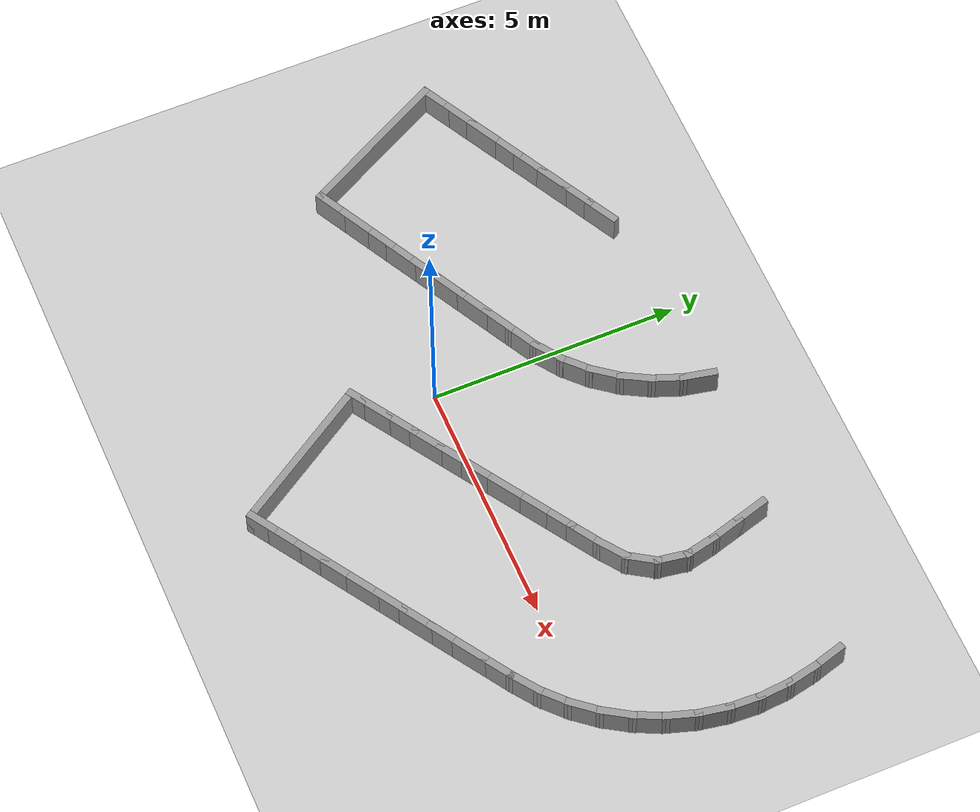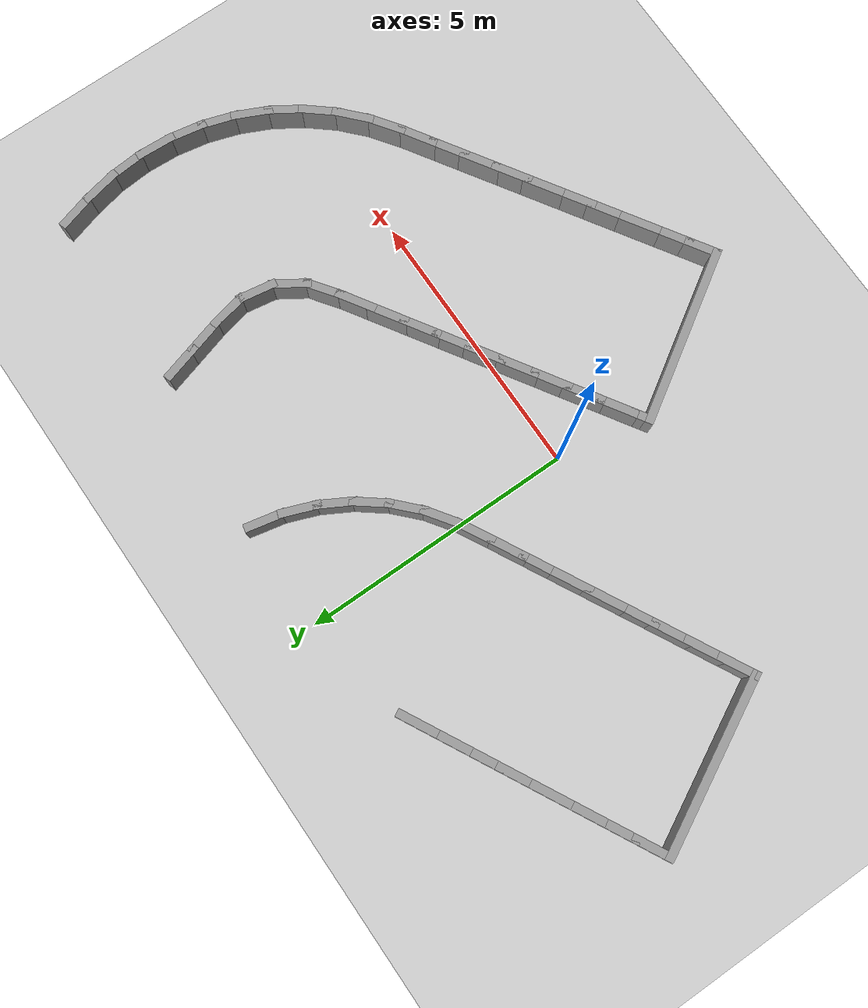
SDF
<sdf version="1.7">
 <world name="default">
  <model name="ground_plane">
   <static>1</static>
   <link name="link">
    <collision name="collision">
     <geometry><plane><normal>0 0 1</normal><size>100 100</size></plane></geometry>
     <surface><friction><ode><mu>100</mu><mu2>50</mu2></ode></friction></surface>
    </collision>
    <visual name="visual">
     <cast_shadows>0</cast_shadows>
     <geometry><plane><normal>0 0 1</normal><size>100 100</size></plane></geometry>
     <material>
      <script><uri>file://media/materials/scripts/gazebo.material</uri><name>Gazebo/Grey</name></script>
     </material>
    </visual>
   </link>
  </model>
  <model name="rand_turn_04">
   <link name="Wall_0">
    <collision name="Wall_0_Collision">
     <geometry><box><size>0.7500 0.1500 0.6000</size></box></geometry>
     <pose>0 0 0.3000 0 -0 0</pose>
    </collision>
    <visual name="Wall_0_Visual">
     <pose>0 0 0.3000 0 -0 0</pose>
     <geometry><box><size>0.7500 0.1500 0.6000</size></box></geometry>
     <material>
      <script><uri>file://media/materials/scripts/gazebo.material</uri><name>Gazebo/Grey</name></script>
      <ambient>1 1 1 1</ambient>
     </material>
    </visual>
    <pose>-6.0179 2.5511 0 0 -0 0.48577</pose>
   </link>
   <link name="Wall_1">
    <collision name="Wall_1_Collision">
     <geometry><box><size>0.7500 0.1500 0.6000</size></box></geometry>
     <pose>0 0 0.3000 0 -0 0</pose>
    </collision>
    <visual name="Wall_1_Visual">
     <pose>0 0 0.3000 0 -0 0</pose>
     <geometry><box><size>0.7500 0.1500 0.6000</size></box></geometry>
     <material>
      <script><uri>file://media/materials/scripts/gazebo.material</uri><name>Gazebo/Grey</name></script>
      <ambient>1 1 1 1</ambient>
     </material>
    </visual>
    <pose>-5.4874 2.8313 0 0 -0 0.48577</pose>
   </link>
   <link name="Wall_2">
    <collision name="Wall_2_Collision">
     <geometry><box><size>0.7500 0.1500 0.6000</size></box></geometry>
     <pose>0 0 0.3000 0 -0 0</pose>
    </collision>
    <visual name="Wall_2_Visual">
     <pose>0 0 0.3000 0 -0 0</pose>
     <geometry><box><size>0.7500 0.1500 0.6000</size></box></geometry>
     <material>
      <script><uri>file://media/materials/scripts/gazebo.material</uri><name>Gazebo/Grey</name></script>
      <ambient>1 1 1 1</ambient>
     </material>
    </visual>
    <pose>-4.9568 3.1114 0 0 -0 0.48577</pose>
   </link>
   <link name="Wall_3">
    <collision name="Wall_3_Collision">
     <geometry><box><size>0.7500 0.1500 0.6000</size></box></geometry>
     <pose>0 0 0.3000 0 -0 0</pose>
    </collision>
    <visual name="Wall_3_Visual">
     <pose>0 0 0.3000 0 -0 0</pose>
     <geometry><box><size>0.7500 0.1500 0.6000</size></box></geometry>
     <material>
      <script><uri>file://media/materials/scripts/gazebo.material</uri><name>Gazebo/Grey</name></script>
      <ambient>1 1 1 1</ambient>
     </material>
    </visual>
    <pose>-4.4262 3.3916 0 0 -0 0.48577</pose>
   </link>
   <link name="Wall_4">
    <collision name="Wall_4_Collision">
     <geometry><box><size>0.7500 0.1500 0.6000</size></box></geometry>
     <pose>0 0 0.3000 0 -0 0</pose>
    </collision>
    <visual name="Wall_4_Visual">
     <pose>0 0 0.3000 0 -0 0</pose>
     <geometry><box><size>0.7500 0.1500 0.6000</size></box></geometry>
     <material>
      <script><uri>file://media/materials/scripts/gazebo.material</uri><name>Gazebo/Grey</name></script>
      <ambient>1 1 1 1</ambient>
     </material>
    </visual>
    <pose>-3.8956 3.6717 0 0 -0 0.48577</pose>
   </link>
   <link name="Wall_5">
    <collision name="Wall_5_Collision">
     <geometry><box><size>0.7500 0.1500 0.6000</size></box></geometry>
     <pose>0 0 0.3000 0 -0 0</pose>
    </collision>
    <visual name="Wall_5_Visual">
     <pose>0 0 0.3000 0 -0 0</pose>
     <geometry><box><size>0.7500 0.1500 0.6000</size></box></geometry>
     <material>
      <script><uri>file://media/materials/scripts/gazebo.material</uri><name>Gazebo/Grey</name></script>
      <ambient>1 1 1 1</ambient>
     </material>
    </visual>
    <pose>-3.3650 3.9518 0 0 -0 0.48577</pose>
   </link>
   <link name="Wall_6">
    <collision name="Wall_6_Collision">
     <geometry><box><size>0.7500 0.1500 0.6000</size></box></geometry>
     <pose>0 0 0.3000 0 -0 0</pose>
    </collision>
    <visual name="Wall_6_Visual">
     <pose>0 0 0.3000 0 -0 0</pose>
     <geometry><box><size>0.7500 0.1500 0.6000</size></box></geometry>
     <material>
      <script><uri>file://media/materials/scripts/gazebo.material</uri><name>Gazebo/Grey</name></script>
      <ambient>1 1 1 1</ambient>
     </material>
    </visual>
    <pose>-2.8344 4.2320 0 0 -0 0.48577</pose>
   </link>
   <link name="Wall_7">
    <collision name="Wall_7_Collision">
     <geometry><box><size>0.7500 0.1500 0.6000</size></box></geometry>
     <pose>0 0 0.3000 0 -0 0</pose>
    </collision>
    <visual name="Wall_7_Visual">
     <pose>0 0 0.3000 0 -0 0</pose>
     <geometry><box><size>0.7500 0.1500 0.6000</size></box></geometry>
     <material>
      <script><uri>file://media/materials/scripts/gazebo.material</uri><name>Gazebo/Grey</name></script>
      <ambient>1 1 1 1</ambient>
     </material>
    </visual>
    <pose>-2.3038 4.5121 0 0 -0 0.48577</pose>
   </link>
   <link name="Wall_48">
    <collision name="Wall_48_Collision">
     <geometry><box><size>0.7500 0.1500 0.6000</size></box></geometry>
     <pose>0 0 0.3000 0 -0 0</pose>
    </collision>
    <visual name="Wall_48_Visual">
     <pose>0 0 0.3000 0 -0 0</pose>
     <geometry><box><size>0.7500 0.1500 0.6000</size></box></geometry>
     <material>
      <script><uri>file://media/materials/scripts/gazebo.material</uri><name>Gazebo/Grey</name></script>
      <ambient>1 1 1 1</ambient>
     </material>
    </visual>
    <pose>8.2523 4.4065 0 0 -0 -1.28869</pose>
   </link>
   <link name="Wall_49">
    <collision name="Wall_49_Collision">
     <geometry><box><size>0.7495 0.1500 0.6000</size></box></geometry>
     <pose>0 0 0.3000 0 -0 0</pose>
    </collision>
    <visual name="Wall_49_Visual">
     <pose>0 0 0.3000 0 -0 0</pose>
     <geometry><box><size>0.7495 0.1500 0.6000</size></box></geometry>
     <material>
      <script><uri>file://media/materials/scripts/gazebo.material</uri><name>Gazebo/Grey</name></script>
      <ambient>1 1 1 1</ambient>
     </material>
    </visual>
    <pose>8.3973 3.8250 0 0 -0 -1.36404</pose>
   </link>
   <link name="Wall_50">
    <collision name="Wall_50_Collision">
     <geometry><box><size>0.7495 0.1500 0.6000</size></box></geometry>
     <pose>0 0 0.3000 0 -0 0</pose>
    </collision>
    <visual name="Wall_50_Visual">
     <pose>0 0 0.3000 0 -0 0</pose>
     <geometry><box><size>0.7495 0.1500 0.6000</size></box></geometry>
     <material>
      <script><uri>file://media/materials/scripts/gazebo.material</uri><name>Gazebo/Grey</name></script>
      <ambient>1 1 1 1</ambient>
     </material>
    </visual>
    <pose>8.4823 3.2327 0 0 -0 -1.49255</pose>
   </link>
   <link name="Wall_51">
    <collision name="Wall_51_Collision">
     <geometry><box><size>0.7496 0.1500 0.6000</size></box></geometry>
     <pose>0 0 0.3000 0 -0 0</pose>
    </collision>
    <visual name="Wall_51_Visual">
     <pose>0 0 0.3000 0 -0 0</pose>
     <geometry><box><size>0.7496 0.1500 0.6000</size></box></geometry>
     <material>
      <script><uri>file://media/materials/scripts/gazebo.material</uri><name>Gazebo/Grey</name></script>
      <ambient>1 1 1 1</ambient>
     </material>
    </visual>
    <pose>8.4906 2.6345 0 0 -0 -1.62125</pose>
   </link>
   <link name="Wall_52">
    <collision name="Wall_52_Collision">
     <geometry><box><size>0.7496 0.1500 0.6000</size></box></geometry>
     <pose>0 0 0.3000 0 -0 0</pose>
    </collision>
    <visual name="Wall_52_Visual">
     <pose>0 0 0.3000 0 -0 0</pose>
     <geometry><box><size>0.7496 0.1500 0.6000</size></box></geometry>
     <material>
      <script><uri>file://media/materials/scripts/gazebo.material</uri><name>Gazebo/Grey</name></script>
      <ambient>1 1 1 1</ambient>
     </material>
    </visual>
    <pose>8.4221 2.0401 0 0 -0 -1.74994</pose>
   </link>
   <link name="Wall_53">
    <collision name="Wall_53_Collision">
     <geometry><box><size>0.7496 0.1500 0.6000</size></box></geometry>
     <pose>0 0 0.3000 0 -0 0</pose>
    </collision>
    <visual name="Wall_53_Visual">
     <pose>0 0 0.3000 0 -0 0</pose>
     <geometry><box><size>0.7496 0.1500 0.6000</size></box></geometry>
     <material>
      <script><uri>file://media/materials/scripts/gazebo.material</uri><name>Gazebo/Grey</name></script>
      <ambient>1 1 1 1</ambient>
     </material>
    </visual>
    <pose>8.2778 1.4594 0 0 -0 -1.87863</pose>
   </link>
   <link name="Wall_54">
    <collision name="Wall_54_Collision">
     <geometry><box><size>0.7496 0.1500 0.6000</size></box></geometry>
     <pose>0 0 0.3000 0 -0 0</pose>
    </collision>
    <visual name="Wall_54_Visual">
     <pose>0 0 0.3000 0 -0 0</pose>
     <geometry><box><size>0.7496 0.1500 0.6000</size></box></geometry>
     <material>
      <script><uri>file://media/materials/scripts/gazebo.material</uri><name>Gazebo/Grey</name></script>
      <ambient>1 1 1 1</ambient>
     </material>
    </visual>
    <pose>8.0602 0.9020 0 0 -0 -2.00741</pose>
   </link>
   <link name="Wall_55">
    <collision name="Wall_55_Collision">
     <geometry><box><size>0.7496 0.1500 0.6000</size></box></geometry>
     <pose>0 0 0.3000 0 -0 0</pose>
    </collision>
    <visual name="Wall_55_Visual">
     <pose>0 0 0.3000 0 -0 0</pose>
     <geometry><box><size>0.7496 0.1500 0.6000</size></box></geometry>
     <material>
      <script><uri>file://media/materials/scripts/gazebo.material</uri><name>Gazebo/Grey</name></script>
      <ambient>1 1 1 1</ambient>
     </material>
    </visual>
    <pose>7.7727 0.3772 0 0 -0 -2.13655</pose>
   </link>
   <link name="Wall_56">
    <collision name="Wall_56_Collision">
     <geometry><box><size>0.7496 0.1500 0.6000</size></box></geometry>
     <pose>0 0 0.3000 0 -0 0</pose>
    </collision>
    <visual name="Wall_56_Visual">
     <pose>0 0 0.3000 0 -0 0</pose>
     <geometry><box><size>0.7496 0.1500 0.6000</size></box></geometry>
     <material>
      <script><uri>file://media/materials/scripts/gazebo.material</uri><name>Gazebo/Grey</name></script>
      <ambient>1 1 1 1</ambient>
     </material>
    </visual>
    <pose>7.4202 -0.1062 0 0 -0 -2.26525</pose>
   </link>
   <link name="Wall_57">
    <collision name="Wall_57_Collision">
     <geometry><box><size>0.7496 0.1500 0.6000</size></box></geometry>
     <pose>0 0 0.3000 0 -0 0</pose>
    </collision>
    <visual name="Wall_57_Visual">
     <pose>0 0 0.3000 0 -0 0</pose>
     <geometry><box><size>0.7496 0.1500 0.6000</size></box></geometry>
     <material>
      <script><uri>file://media/materials/scripts/gazebo.material</uri><name>Gazebo/Grey</name></script>
      <ambient>1 1 1 1</ambient>
     </material>
    </visual>
    <pose>7.0085 -0.5404 0 0 -0 -2.39394</pose>
   </link>
   <link name="Wall_58">
    <collision name="Wall_58_Collision">
     <geometry><box><size>0.7496 0.1500 0.6000</size></box></geometry>
     <pose>0 0 0.3000 0 -0 0</pose>
    </collision>
    <visual name="Wall_58_Visual">
     <pose>0 0 0.3000 0 -0 0</pose>
     <geometry><box><size>0.7496 0.1500 0.6000</size></box></geometry>
     <material>
      <script><uri>file://media/materials/scripts/gazebo.material</uri><name>Gazebo/Grey</name></script>
      <ambient>1 1 1 1</ambient>
     </material>
    </visual>
    <pose>6.5446 -0.9184 0 0 -0 -2.52158</pose>
   </link>
   <link name="Wall_59">
    <collision name="Wall_59_Collision">
     <geometry><box><size>0.7500 0.1500 0.6000</size></box></geometry>
     <pose>0 0 0.3000 0 -0 0</pose>
    </collision>
    <visual name="Wall_59_Visual">
     <pose>0 0 0.3000 0 -0 0</pose>
     <geometry><box><size>0.7500 0.1500 0.6000</size></box></geometry>
     <material>
      <script><uri>file://media/materials/scripts/gazebo.material</uri><name>Gazebo/Grey</name></script>
      <ambient>1 1 1 1</ambient>
     </material>
    </visual>
    <pose>6.0476 -1.2538 0 0 -0 -2.57446</pose>
   </link>
   <link name="Wall_60">
    <collision name="Wall_60_Collision">
     <geometry><box><size>0.7500 0.1500 0.6000</size></box></geometry>
     <pose>0 0 0.3000 0 -0 0</pose>
    </collision>
    <visual name="Wall_60_Visual">
     <pose>0 0 0.3000 0 -0 0</pose>
     <geometry><box><size>0.7500 0.1500 0.6000</size></box></geometry>
     <material>
      <script><uri>file://media/materials/scripts/gazebo.material</uri><name>Gazebo/Grey</name></script>
      <ambient>1 1 1 1</ambient>
     </material>
    </visual>
    <pose>5.5416 -1.5761 0 0 -0 -2.57447</pose>
   </link>
   <link name="Wall_61">
    <collision name="Wall_61_Collision">
     <geometry><box><size>0.7500 0.1500 0.6000</size></box></geometry>
     <pose>0 0 0.3000 0 -0 0</pose>
    </collision>
    <visual name="Wall_61_Visual">
     <pose>0 0 0.3000 0 -0 0</pose>
     <geometry><box><size>0.7500 0.1500 0.6000</size></box></geometry>
     <material>
      <script><uri>file://media/materials/scripts/gazebo.material</uri><name>Gazebo/Grey</name></script>
      <ambient>1 1 1 1</ambient>
     </material>
    </visual>
    <pose>5.0355 -1.8984 0 0 -0 -2.57447</pose>
   </link>
   <link name="Wall_62">
    <collision name="Wall_62_Collision">
     <geometry><box><size>0.7500 0.1500 0.6000</size></box></geometry>
     <pose>0 0 0.3000 0 -0 0</pose>
    </collision>
    <visual name="Wall_62_Visual">
     <pose>0 0 0.3000 0 -0 0</pose>
     <geometry><box><size>0.7500 0.1500 0.6000</size></box></geometry>
     <material>
      <script><uri>file://media/materials/scripts/gazebo.material</uri><name>Gazebo/Grey</name></script>
      <ambient>1 1 1 1</ambient>
     </material>
    </visual>
    <pose>4.5294 -2.2208 0 0 -0 -2.57447</pose>
   </link>
   <link name="Wall_63">
    <collision name="Wall_63_Collision">
     <geometry><box><size>0.7500 0.1500 0.6000</size></box></geometry>
     <pose>0 0 0.3000 0 -0 0</pose>
    </collision>
    <visual name="Wall_63_Visual">
     <pose>0 0 0.3000 0 -0 0</pose>
     <geometry><box><size>0.7500 0.1500 0.6000</size></box></geometry>
     <material>
      <script><uri>file://media/materials/scripts/gazebo.material</uri><name>Gazebo/Grey</name></script>
      <ambient>1 1 1 1</ambient>
     </material>
    </visual>
    <pose>4.0233 -2.5431 0 0 -0 -2.57447</pose>
   </link>
   <link name="Wall_64">
    <collision name="Wall_64_Collision">
     <geometry><box><size>0.7500 0.1500 0.6000</size></box></geometry>
     <pose>0 0 0.3000 0 -0 0</pose>
    </collision>
    <visual name="Wall_64_Visual">
     <pose>0 0 0.3000 0 -0 0</pose>
     <geometry><box><size>0.7500 0.1500 0.6000</size></box></geometry>
     <material>
      <script><uri>file://media/materials/scripts/gazebo.material</uri><name>Gazebo/Grey</name></script>
      <ambient>1 1 1 1</ambient>
     </material>
    </visual>
    <pose>3.5173 -2.8654 0 0 -0 -2.57447</pose>
   </link>
   <link name="Wall_65">
    <collision name="Wall_65_Collision">
     <geometry><box><size>0.7500 0.1500 0.6000</size></box></geometry>
     <pose>0 0 0.3000 0 -0 0</pose>
    </collision>
    <visual name="Wall_65_Visual">
     <pose>0 0 0.3000 0 -0 0</pose>
     <geometry><box><size>0.7500 0.1500 0.6000</size></box></geometry>
     <material>
      <script><uri>file://media/materials/scripts/gazebo.material</uri><name>Gazebo/Grey</name></script>
      <ambient>1 1 1 1</ambient>
     </material>
    </visual>
    <pose>3.0112 -3.1877 0 0 -0 -2.57447</pose>
   </link>
   <link name="Wall_66">
    <collision name="Wall_66_Collision">
     <geometry><box><size>0.7500 0.1500 0.6000</size></box></geometry>
     <pose>0 0 0.3000 0 -0 0</pose>
    </collision>
    <visual name="Wall_66_Visual">
     <pose>0 0 0.3000 0 -0 0</pose>
     <geometry><box><size>0.7500 0.1500 0.6000</size></box></geometry>
     <material>
      <script><uri>file://media/materials/scripts/gazebo.material</uri><name>Gazebo/Grey</name></script>
      <ambient>1 1 1 1</ambient>
     </material>
    </visual>
    <pose>2.5051 -3.5100 0 0 -0 -2.57447</pose>
   </link>
   <link name="Wall_67">
    <collision name="Wall_67_Collision">
     <geometry><box><size>0.7500 0.1500 0.6000</size></box></geometry>
     <pose>0 0 0.3000 0 -0 0</pose>
    </collision>
    <visual name="Wall_67_Visual">
     <pose>0 0 0.3000 0 -0 0</pose>
     <geometry><box><size>0.7500 0.1500 0.6000</size></box></geometry>
     <material>
      <script><uri>file://media/materials/scripts/gazebo.material</uri><name>Gazebo/Grey</name></script>
      <ambient>1 1 1 1</ambient>
     </material>
    </visual>
    <pose>1.9991 -3.8324 0 0 -0 -2.57447</pose>
   </link>
   <link name="Wall_68">
    <collision name="Wall_68_Collision">
     <geometry><box><size>0.6569 0.1500 0.6000</size></box></geometry>
     <pose>0 0 0.3000 0 -0 0</pose>
    </collision>
    <visual name="Wall_68_Visual">
     <pose>0 0 0.3000 0 -0 0</pose>
     <geometry><box><size>0.6569 0.1500 0.6000</size></box></geometry>
     <material>
      <script><uri>file://media/materials/scripts/gazebo.material</uri><name>Gazebo/Grey</name></script>
      <ambient>1 1 1 1</ambient>
     </material>
    </visual>
    <pose>1.5322 -4.1297 0 0 -0 -2.57447</pose>
   </link>
   <link name="Wall_69">
    <collision name="Wall_69_Collision">
     <geometry><box><size>0.7500 0.1500 0.6000</size></box></geometry>
     <pose>0 0 0.3000 0 -0 0</pose>
    </collision>
    <visual name="Wall_69_Visual">
     <pose>0 0 0.3000 0 -0 0</pose>
     <geometry><box><size>0.7500 0.1500 0.6000</size></box></geometry>
     <material>
      <script><uri>file://media/materials/scripts/gazebo.material</uri><name>Gazebo/Grey</name></script>
      <ambient>1 1 1 1</ambient>
     </material>
    </visual>
    <pose>-4.5203 -0.2854 0 0 -0 0.48577</pose>
   </link>
   <link name="Wall_70">
    <collision name="Wall_70_Collision">
     <geometry><box><size>0.7500 0.1500 0.6000</size></box></geometry>
     <pose>0 0 0.3000 0 -0 0</pose>
    </collision>
    <visual name="Wall_70_Visual">
     <pose>0 0 0.3000 0 -0 0</pose>
     <geometry><box><size>0.7500 0.1500 0.6000</size></box></geometry>
     <material>
      <script><uri>file://media/materials/scripts/gazebo.material</uri><name>Gazebo/Grey</name></script>
      <ambient>1 1 1 1</ambient>
     </material>
    </visual>
    <pose>-3.9897 -0.0052 0 0 -0 0.48577</pose>
   </link>
   <link name="Wall_71">
    <collision name="Wall_71_Collision">
     <geometry><box><size>0.7500 0.1500 0.6000</size></box></geometry>
     <pose>0 0 0.3000 0 -0 0</pose>
    </collision>
    <visual name="Wall_71_Visual">
     <pose>0 0 0.3000 0 -0 0</pose>
     <geometry><box><size>0.7500 0.1500 0.6000</size></box></geometry>
     <material>
      <script><uri>file://media/materials/scripts/gazebo.material</uri><name>Gazebo/Grey</name></script>
      <ambient>1 1 1 1</ambient>
     </material>
    </visual>
    <pose>-3.4592 0.2749 0 0 -0 0.48577</pose>
   </link>
   <link name="Wall_72">
    <collision name="Wall_72_Collision">
     <geometry><box><size>0.7500 0.1500 0.6000</size></box></geometry>
     <pose>0 0 0.3000 0 -0 0</pose>
    </collision>
    <visual name="Wall_72_Visual">
     <pose>0 0 0.3000 0 -0 0</pose>
     <geometry><box><size>0.7500 0.1500 0.6000</size></box></geometry>
     <material>
      <script><uri>file://media/materials/scripts/gazebo.material</uri><name>Gazebo/Grey</name></script>
      <ambient>1 1 1 1</ambient>
     </material>
    </visual>
    <pose>-2.9286 0.5550 0 0 -0 0.48577</pose>
   </link>
   <link name="Wall_73">
    <collision name="Wall_73_Collision">
     <geometry><box><size>0.7500 0.1500 0.6000</size></box></geometry>
     <pose>0 0 0.3000 0 -0 0</pose>
    </collision>
    <visual name="Wall_73_Visual">
     <pose>0 0 0.3000 0 -0 0</pose>
     <geometry><box><size>0.7500 0.1500 0.6000</size></box></geometry>
     <material>
      <script><uri>file://media/materials/scripts/gazebo.material</uri><name>Gazebo/Grey</name></script>
      <ambient>1 1 1 1</ambient>
     </material>
    </visual>
    <pose>-2.3980 0.8352 0 0 -0 0.48577</pose>
   </link>
   <link name="Wall_74">
    <collision name="Wall_74_Collision">
     <geometry><box><size>0.7500 0.1500 0.6000</size></box></geometry>
     <pose>0 0 0.3000 0 -0 0</pose>
    </collision>
    <visual name="Wall_74_Visual">
     <pose>0 0 0.3000 0 -0 0</pose>
     <geometry><box><size>0.7500 0.1500 0.6000</size></box></geometry>
     <material>
      <script><uri>file://media/materials/scripts/gazebo.material</uri><name>Gazebo/Grey</name></script>
      <ambient>1 1 1 1</ambient>
     </material>
    </visual>
    <pose>-1.8674 1.1153 0 0 -0 0.48577</pose>
   </link>
   <link name="Wall_75">
    <collision name="Wall_75_Collision">
     <geometry><box><size>0.7500 0.1500 0.6000</size></box></geometry>
     <pose>0 0 0.3000 0 -0 0</pose>
    </collision>
    <visual name="Wall_75_Visual">
     <pose>0 0 0.3000 0 -0 0</pose>
     <geometry><box><size>0.7500 0.1500 0.6000</size></box></geometry>
     <material>
      <script><uri>file://media/materials/scripts/gazebo.material</uri><name>Gazebo/Grey</name></script>
      <ambient>1 1 1 1</ambient>
     </material>
    </visual>
    <pose>-1.3368 1.3954 0 0 -0 0.48577</pose>
   </link>
   <link name="Wall_76">
    <collision name="Wall_76_Collision">
     <geometry><box><size>0.7500 0.1500 0.6000</size></box></geometry>
     <pose>0 0 0.3000 0 -0 0</pose>
    </collision>
    <visual name="Wall_76_Visual">
     <pose>0 0 0.3000 0 -0 0</pose>
     <geometry><box><size>0.7500 0.1500 0.6000</size></box></geometry>
     <material>
      <script><uri>file://media/materials/scripts/gazebo.material</uri><name>Gazebo/Grey</name></script>
      <ambient>1 1 1 1</ambient>
     </material>
    </visual>
    <pose>-0.8062 1.6756 0 0 -0 0.48577</pose>
   </link>
   <link name="Wall_77">
    <collision name="Wall_77_Collision">
     <geometry><box><size>0.7499 0.1500 0.6000</size></box></geometry>
     <pose>0 0 0.3000 0 -0 0</pose>
    </collision>
    <visual name="Wall_77_Visual">
     <pose>0 0 0.3000 0 -0 0</pose>
     <geometry><box><size>0.7499 0.1500 0.6000</size></box></geometry>
     <material>
      <script><uri>file://media/materials/scripts/gazebo.material</uri><name>Gazebo/Grey</name></script>
      <ambient>1 1 1 1</ambient>
     </material>
    </visual>
    <pose>-0.2770 1.9581 0 0 -0 0.49503</pose>
   </link>
   <link name="Wall_78">
    <collision name="Wall_78_Collision">
     <geometry><box><size>0.7494 0.1500 0.6000</size></box></geometry>
     <pose>0 0 0.3000 0 -0 0</pose>
    </collision>
    <visual name="Wall_78_Visual">
     <pose>0 0 0.3000 0 -0 0</pose>
     <geometry><box><size>0.7494 0.1500 0.6000</size></box></geometry>
     <material>
      <script><uri>file://media/materials/scripts/gazebo.material</uri><name>Gazebo/Grey</name></script>
      <ambient>1 1 1 1</ambient>
     </material>
    </visual>
    <pose>0.2325 2.2726 0 0 -0 0.61091</pose>
   </link>
   <link name="Wall_79">
    <collision name="Wall_79_Collision">
     <geometry><box><size>0.7494 0.1500 0.6000</size></box></geometry>
     <pose>0 0 0.3000 0 -0 0</pose>
    </collision>
    <visual name="Wall_79_Visual">
     <pose>0 0 0.3000 0 -0 0</pose>
     <geometry><box><size>0.7494 0.1500 0.6000</size></box></geometry>
     <material>
      <script><uri>file://media/materials/scripts/gazebo.material</uri><name>Gazebo/Grey</name></script>
      <ambient>1 1 1 1</ambient>
     </material>
    </visual>
    <pose>0.6949 2.6512 0 0 -0 0.76139</pose>
   </link>
   <link name="Wall_80">
    <collision name="Wall_80_Collision">
     <geometry><box><size>0.7494 0.1500 0.6000</size></box></geometry>
     <pose>0 0 0.3000 0 -0 0</pose>
    </collision>
    <visual name="Wall_80_Visual">
     <pose>0 0 0.3000 0 -0 0</pose>
     <geometry><box><size>0.7494 0.1500 0.6000</size></box></geometry>
     <material>
      <script><uri>file://media/materials/scripts/gazebo.material</uri><name>Gazebo/Grey</name></script>
      <ambient>1 1 1 1</ambient>
     </material>
    </visual>
    <pose>1.0958 3.0946 0 0 -0 0.90985</pose>
   </link>
   <link name="Wall_81">
    <collision name="Wall_81_Collision">
     <geometry><box><size>0.7494 0.1500 0.6000</size></box></geometry>
     <pose>0 0 0.3000 0 -0 0</pose>
    </collision>
    <visual name="Wall_81_Visual">
     <pose>0 0 0.3000 0 -0 0</pose>
     <geometry><box><size>0.7494 0.1500 0.6000</size></box></geometry>
     <material>
      <script><uri>file://media/materials/scripts/gazebo.material</uri><name>Gazebo/Grey</name></script>
      <ambient>1 1 1 1</ambient>
     </material>
    </visual>
    <pose>1.4257 3.5930 0 0 -0 1.06249</pose>
   </link>
   <link name="Wall_82">
    <collision name="Wall_82_Collision">
     <geometry><box><size>0.7494 0.1500 0.6000</size></box></geometry>
     <pose>0 0 0.3000 0 -0 0</pose>
    </collision>
    <visual name="Wall_82_Visual">
     <pose>0 0 0.3000 0 -0 0</pose>
     <geometry><box><size>0.7494 0.1500 0.6000</size></box></geometry>
     <material>
      <script><uri>file://media/materials/scripts/gazebo.material</uri><name>Gazebo/Grey</name></script>
      <ambient>1 1 1 1</ambient>
     </material>
    </visual>
    <pose>1.6771 4.1353 0 0 -0 1.21067</pose>
   </link>
   <link name="Wall_83">
    <collision name="Wall_83_Collision">
     <geometry><box><size>0.7494 0.1500 0.6000</size></box></geometry>
     <pose>0 0 0.3000 0 -0 0</pose>
    </collision>
    <visual name="Wall_83_Visual">
     <pose>0 0 0.3000 0 -0 0</pose>
     <geometry><box><size>0.7494 0.1500 0.6000</size></box></geometry>
     <material>
      <script><uri>file://media/materials/scripts/gazebo.material</uri><name>Gazebo/Grey</name></script>
      <ambient>1 1 1 1</ambient>
     </material>
    </visual>
    <pose>1.8450 4.7089 0 0 -0 1.36170</pose>
   </link>
   <link name="Wall_106">
    <collision name="Wall_106_Collision">
     <geometry><box><size>0.7500 0.1500 0.6000</size></box></geometry>
     <pose>0 0 0.3000 0 -0 0</pose>
    </collision>
    <visual name="Wall_106_Visual">
     <pose>0 0 0.3000 0 -0 0</pose>
     <geometry><box><size>0.7500 0.1500 0.6000</size></box></geometry>
     <material>
      <script><uri>file://media/materials/scripts/gazebo.material</uri><name>Gazebo/Grey</name></script>
      <ambient>1 1 1 1</ambient>
     </material>
    </visual>
    <pose>4.9178 4.3858 0 0 -0 -1.28732</pose>
   </link>
   <link name="Wall_107">
    <collision name="Wall_107_Collision">
     <geometry><box><size>0.7500 0.1500 0.6000</size></box></geometry>
     <pose>0 0 0.3000 0 -0 0</pose>
    </collision>
    <visual name="Wall_107_Visual">
     <pose>0 0 0.3000 0 -0 0</pose>
     <geometry><box><size>0.7500 0.1500 0.6000</size></box></geometry>
     <material>
      <script><uri>file://media/materials/scripts/gazebo.material</uri><name>Gazebo/Grey</name></script>
      <ambient>1 1 1 1</ambient>
     </material>
    </visual>
    <pose>5.0856 3.8098 0 0 -0 -1.28732</pose>
   </link>
   <link name="Wall_108">
    <collision name="Wall_108_Collision">
     <geometry><box><size>0.7482 0.1500 0.6000</size></box></geometry>
     <pose>0 0 0.3000 0 -0 0</pose>
    </collision>
    <visual name="Wall_108_Visual">
     <pose>0 0 0.3000 0 -0 0</pose>
     <geometry><box><size>0.7482 0.1500 0.6000</size></box></geometry>
     <material>
      <script><uri>file://media/materials/scripts/gazebo.material</uri><name>Gazebo/Grey</name></script>
      <ambient>1 1 1 1</ambient>
     </material>
    </visual>
    <pose>5.2334 3.2296 0 0 -0 -1.35546</pose>
   </link>
   <link name="Wall_109">
    <collision name="Wall_109_Collision">
     <geometry><box><size>0.7457 0.1500 0.6000</size></box></geometry>
     <pose>0 0 0.3000 0 -0 0</pose>
    </collision>
    <visual name="Wall_109_Visual">
     <pose>0 0 0.3000 0 -0 0</pose>
     <geometry><box><size>0.7457 0.1500 0.6000</size></box></geometry>
     <material>
      <script><uri>file://media/materials/scripts/gazebo.material</uri><name>Gazebo/Grey</name></script>
      <ambient>1 1 1 1</ambient>
     </material>
    </visual>
    <pose>5.2499 2.6433 0 0 -0 -1.73050</pose>
   </link>
   <link name="Wall_110">
    <collision name="Wall_110_Collision">
     <geometry><box><size>0.7457 0.1500 0.6000</size></box></geometry>
     <pose>0 0 0.3000 0 -0 0</pose>
    </collision>
    <visual name="Wall_110_Visual">
     <pose>0 0 0.3000 0 -0 0</pose>
     <geometry><box><size>0.7457 0.1500 0.6000</size></box></geometry>
     <material>
      <script><uri>file://media/materials/scripts/gazebo.material</uri><name>Gazebo/Grey</name></script>
      <ambient>1 1 1 1</ambient>
     </material>
    </visual>
    <pose>5.0412 2.0989 0 0 -0 -2.14353</pose>
   </link>
   <link name="Wall_111">
    <collision name="Wall_111_Collision">
     <geometry><box><size>0.7483 0.1500 0.6000</size></box></geometry>
     <pose>0 0 0.3000 0 -0 0</pose>
    </collision>
    <visual name="Wall_111_Visual">
     <pose>0 0 0.3000 0 -0 0</pose>
     <geometry><box><size>0.7483 0.1500 0.6000</size></box></geometry>
     <material>
      <script><uri>file://media/materials/scripts/gazebo.material</uri><name>Gazebo/Grey</name></script>
      <ambient>1 1 1 1</ambient>
     </material>
    </visual>
    <pose>4.6377 1.6728 0 0 -0 -2.51338</pose>
   </link>
   <link name="Wall_112">
    <collision name="Wall_112_Collision">
     <geometry><box><size>0.7500 0.1500 0.6000</size></box></geometry>
     <pose>0 0 0.3000 0 -0 0</pose>
    </collision>
    <visual name="Wall_112_Visual">
     <pose>0 0 0.3000 0 -0 0</pose>
     <geometry><box><size>0.7500 0.1500 0.6000</size></box></geometry>
     <material>
      <script><uri>file://media/materials/scripts/gazebo.material</uri><name>Gazebo/Grey</name></script>
      <ambient>1 1 1 1</ambient>
     </material>
    </visual>
    <pose>4.1426 1.3358 0 0 -0 -2.57447</pose>
   </link>
   <link name="Wall_113">
    <collision name="Wall_113_Collision">
     <geometry><box><size>0.7500 0.1500 0.6000</size></box></geometry>
     <pose>0 0 0.3000 0 -0 0</pose>
    </collision>
    <visual name="Wall_113_Visual">
     <pose>0 0 0.3000 0 -0 0</pose>
     <geometry><box><size>0.7500 0.1500 0.6000</size></box></geometry>
     <material>
      <script><uri>file://media/materials/scripts/gazebo.material</uri><name>Gazebo/Grey</name></script>
      <ambient>1 1 1 1</ambient>
     </material>
    </visual>
    <pose>3.6365 1.0135 0 0 -0 -2.57447</pose>
   </link>
   <link name="Wall_114">
    <collision name="Wall_114_Collision">
     <geometry><box><size>0.7500 0.1500 0.6000</size></box></geometry>
     <pose>0 0 0.3000 0 -0 0</pose>
    </collision>
    <visual name="Wall_114_Visual">
     <pose>0 0 0.3000 0 -0 0</pose>
     <geometry><box><size>0.7500 0.1500 0.6000</size></box></geometry>
     <material>
      <script><uri>file://media/materials/scripts/gazebo.material</uri><name>Gazebo/Grey</name></script>
      <ambient>1 1 1 1</ambient>
     </material>
    </visual>
    <pose>3.1305 0.6912 0 0 -0 -2.57447</pose>
   </link>
   <link name="Wall_115">
    <collision name="Wall_115_Collision">
     <geometry><box><size>0.7500 0.1500 0.6000</size></box></geometry>
     <pose>0 0 0.3000 0 -0 0</pose>
    </collision>
    <visual name="Wall_115_Visual">
     <pose>0 0 0.3000 0 -0 0</pose>
     <geometry><box><size>0.7500 0.1500 0.6000</size></box></geometry>
     <material>
      <script><uri>file://media/materials/scripts/gazebo.material</uri><name>Gazebo/Grey</name></script>
      <ambient>1 1 1 1</ambient>
     </material>
    </visual>
    <pose>2.6244 0.3688 0 0 -0 -2.57447</pose>
   </link>
   <link name="Wall_116">
    <collision name="Wall_116_Collision">
     <geometry><box><size>0.7500 0.1500 0.6000</size></box></geometry>
     <pose>0 0 0.3000 0 -0 0</pose>
    </collision>
    <visual name="Wall_116_Visual">
     <pose>0 0 0.3000 0 -0 0</pose>
     <geometry><box><size>0.7500 0.1500 0.6000</size></box></geometry>
     <material>
      <script><uri>file://media/materials/scripts/gazebo.material</uri><name>Gazebo/Grey</name></script>
      <ambient>1 1 1 1</ambient>
     </material>
    </visual>
    <pose>2.1183 0.0465 0 0 -0 -2.57447</pose>
   </link>
   <link name="Wall_117">
    <collision name="Wall_117_Collision">
     <geometry><box><size>0.7500 0.1500 0.6000</size></box></geometry>
     <pose>0 0 0.3000 0 -0 0</pose>
    </collision>
    <visual name="Wall_117_Visual">
     <pose>0 0 0.3000 0 -0 0</pose>
     <geometry><box><size>0.7500 0.1500 0.6000</size></box></geometry>
     <material>
      <script><uri>file://media/materials/scripts/gazebo.material</uri><name>Gazebo/Grey</name></script>
      <ambient>1 1 1 1</ambient>
     </material>
    </visual>
    <pose>1.6122 -0.2758 0 0 -0 -2.57447</pose>
   </link>
   <link name="Wall_118">
    <collision name="Wall_118_Collision">
     <geometry><box><size>0.7500 0.1500 0.6000</size></box></geometry>
     <pose>0 0 0.3000 0 -0 0</pose>
    </collision>
    <visual name="Wall_118_Visual">
     <pose>0 0 0.3000 0 -0 0</pose>
     <geometry><box><size>0.7500 0.1500 0.6000</size></box></geometry>
     <material>
      <script><uri>file://media/materials/scripts/gazebo.material</uri><name>Gazebo/Grey</name></script>
      <ambient>1 1 1 1</ambient>
     </material>
    </visual>
    <pose>1.1062 -0.5981 0 0 -0 -2.57447</pose>
   </link>
   <link name="Wall_119">
    <collision name="Wall_119_Collision">
     <geometry><box><size>0.7500 0.1500 0.6000</size></box></geometry>
     <pose>0 0 0.3000 0 -0 0</pose>
    </collision>
    <visual name="Wall_119_Visual">
     <pose>0 0 0.3000 0 -0 0</pose>
     <geometry><box><size>0.7500 0.1500 0.6000</size></box></geometry>
     <material>
      <script><uri>file://media/materials/scripts/gazebo.material</uri><name>Gazebo/Grey</name></script>
      <ambient>1 1 1 1</ambient>
     </material>
    </visual>
    <pose>0.6001 -0.9204 0 0 -0 -2.57447</pose>
   </link>
   <link name="Wall_120">
    <collision name="Wall_120_Collision">
     <geometry><box><size>0.7500 0.1500 0.6000</size></box></geometry>
     <pose>0 0 0.3000 0 -0 0</pose>
    </collision>
    <visual name="Wall_120_Visual">
     <pose>0 0 0.3000 0 -0 0</pose>
     <geometry><box><size>0.7500 0.1500 0.6000</size></box></geometry>
     <material>
      <script><uri>file://media/materials/scripts/gazebo.material</uri><name>Gazebo/Grey</name></script>
      <ambient>1 1 1 1</ambient>
     </material>
    </visual>
    <pose>0.0940 -1.2428 0 0 -0 -2.57447</pose>
   </link>
   <link name="Wall_121">
    <collision name="Wall_121_Collision">
     <geometry><box><size>0.4413 0.1500 0.6000</size></box></geometry>
     <pose>0 0 0.3000 0 -0 0</pose>
    </collision>
    <visual name="Wall_121_Visual">
     <pose>0 0 0.3000 0 -0 0</pose>
     <geometry><box><size>0.4413 0.1500 0.6000</size></box></geometry>
     <material>
      <script><uri>file://media/materials/scripts/gazebo.material</uri><name>Gazebo/Grey</name></script>
      <ambient>1 1 1 1</ambient>
     </material>
    </visual>
    <pose>-0.2818 -1.4822 0 0 -0 -2.57447</pose>
   </link>
   <link name="Wall_122">
    <collision name="Wall_122_Collision">
     <geometry><box><size>3.3576 0.1500 0.6000</size></box></geometry>
     <pose>0 0 0.3000 0 -0 0</pose>
    </collision>
    <visual name="Wall_122_Visual">
     <pose>0 0 0.3000 0 -0 0</pose>
     <geometry><box><size>3.3576 0.1500 0.6000</size></box></geometry>
     <material>
      <script><uri>file://media/materials/scripts/gazebo.material</uri><name>Gazebo/Grey</name></script>
      <ambient>1 1 1 1</ambient>
     </material>
    </visual>
    <pose>-5.5344 0.9928 0 0 -0 2.05657</pose>
   </link>
   <link name="Wall_123">
    <collision name="Wall_123_Collision">
     <geometry><box><size>3.3576 0.1500 0.6000</size></box></geometry>
     <pose>0 0 0.3000 0 -0 0</pose>
    </collision>
    <visual name="Wall_123_Visual">
     <pose>0 0 0.3000 0 -0 0</pose>
     <geometry><box><size>3.3576 0.1500 0.6000</size></box></geometry>
     <material>
      <script><uri>file://media/materials/scripts/gazebo.material</uri><name>Gazebo/Grey</name></script>
      <ambient>1 1 1 1</ambient>
     </material>
    </visual>
    <pose>0.4569 -2.9131 0 0 -0 2.13791</pose>
   </link>
   <static>1</static>
  </model>
 </world>
</sdf>
